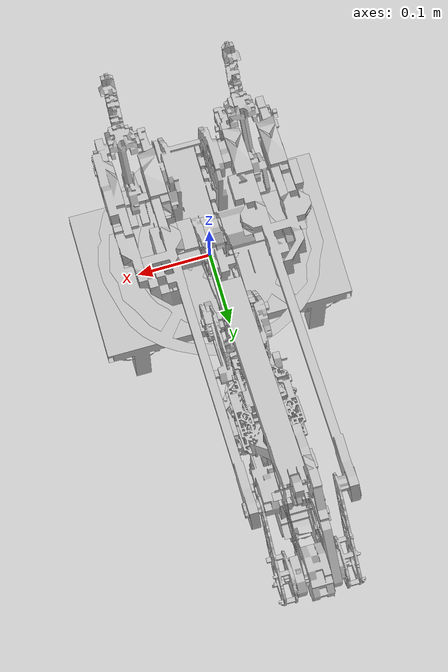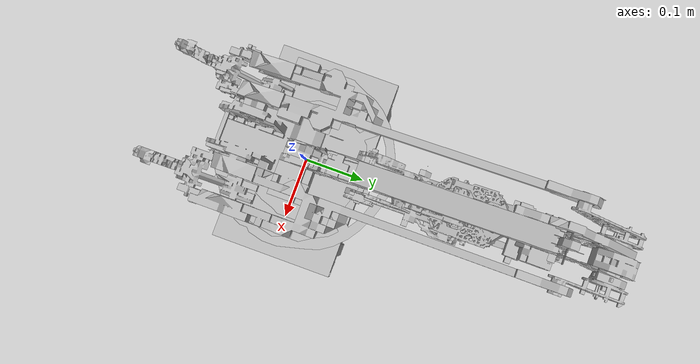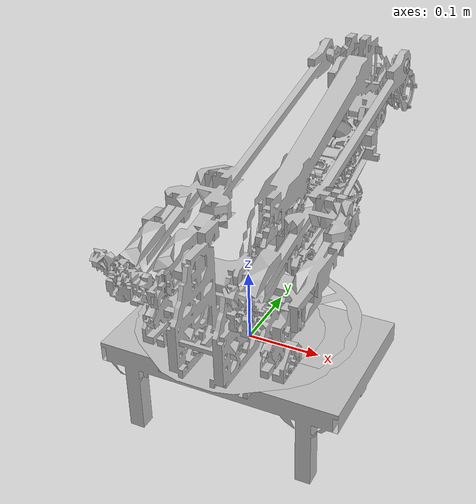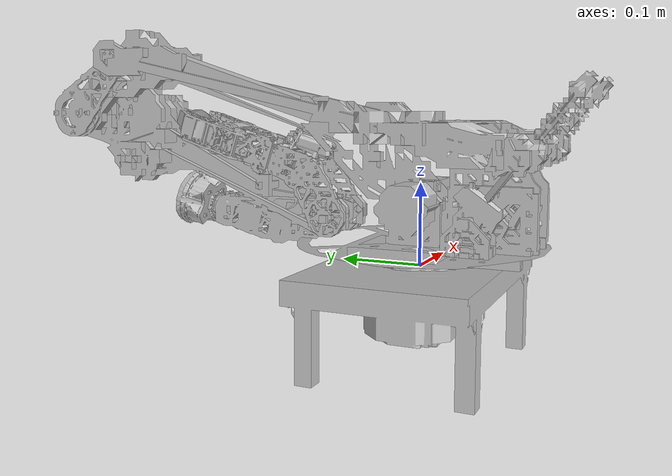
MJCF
<mujoco model="0-臂-anOt">
  <compiler angle="radian" meshdir="meshes/"/>

  <asset>
    <mesh name="base_link" file="base_link.STL"/>
    <mesh name="Link_1" file="Link_1.STL"/>
    <mesh name="Link_2" file="Link_2.STL"/>
    <mesh name="Link_3" file="Link_3.STL"/>
    <mesh name="Link_4" file="Link_4.STL"/>
    <mesh name="Link_5" file="Link_5.STL"/>
    <mesh name="Link_6" file="Link_6.STL"/>
    <mesh name="Link_7" file="Link_7.STL"/>
    <mesh name="Link_11" file="Link_11.STL"/>
    <mesh name="Link_12" file="Link_12.STL"/>
    <mesh name="Link_10" file="Link_10.STL"/>
    <mesh name="Link_8" file="Link_8.STL"/>
    <mesh name="Link_9" file="Link_9.STL"/>
  </asset>

  <worldbody>
    <geom type="mesh" contype="0" conaffinity="0" group="1" density="0" rgba="0.75294 0.75294 0.75294 1" mesh="base_link"/>
    <geom type="mesh" rgba="0.75294 0.75294 0.75294 1" mesh="base_link"/>
    <body name="Link_1">
      <inertial pos="-0.01219 -0.025726 0.049914" quat="0.498078 0.501937 -0.501957 0.498012" mass="1.3823" diaginertia="0.00505165 0.003172 0.00250855"/>
      <joint name="J1" pos="0 0 0" axis="0 0 -1" range="-3.1416 3.1416"/>
      <geom type="mesh" contype="0" conaffinity="0" group="1" density="0" rgba="0.75294 0.75294 0.75294 1" mesh="Link_1"/>
      <geom type="mesh" rgba="0.75294 0.75294 0.75294 1" mesh="Link_1"/>
      <body name="Link_2" pos="0 0 0.07535" quat="0.707105 0 0.707108 0">
        <inertial pos="-0.068871 0.15511 0.014607" quat="0.444666 0.549754 -0.444688 0.549814" mass="1.1524" diaginertia="0.0022314 0.00175426 0.000604138"/>
        <joint name="J2" pos="0 0 0" axis="0 0 1" range="0 2.227"/>
        <geom type="mesh" contype="0" conaffinity="0" group="1" density="0" rgba="0.75294 0.75294 0.75294 1" mesh="Link_2"/>
        <geom type="mesh" rgba="0.75294 0.75294 0.75294 1" mesh="Link_2"/>
        <body name="Link_3" pos="-0.10725 0.48836 0" quat="1.34924e-11 3.67321e-06 -1 -3.67321e-06">
          <inertial pos="-0.041769 -0.12706 -3.4379e-06" quat="0.573415 0.413012 -0.573978 0.413722" mass="1.2359" diaginertia="0.0019604 0.00184772 0.000311304"/>
          <joint name="J3" pos="0 0 0" axis="0 0 -1" range="0 4.276"/>
          <geom type="mesh" contype="0" conaffinity="0" group="1" density="0" rgba="0.75294 0.75294 0.75294 1" mesh="Link_3"/>
          <geom type="mesh" rgba="0.75294 0.75294 0.75294 1" mesh="Link_3"/>
          <body name="Link_4" pos="-0.12444 -0.38015 0">
            <inertial pos="-0.0066335 0.11402 -0.0088916" quat="0.717581 0.693915 -0.0575559 0.0157091" mass="0.29689" diaginertia="0.000181189 0.000175591 5.39369e-05"/>
            <joint name="J4" pos="0 0 0" axis="0 0 1" range="0 3.927"/>
            <geom type="mesh" contype="0" conaffinity="0" group="1" density="0" rgba="0.75294 0.75294 0.75294 1" mesh="Link_4"/>
            <geom type="mesh" rgba="0.75294 0.75294 0.75294 1" mesh="Link_4"/>
            <body name="Link_5" pos="5.6187e-05 0.16772 0" quat="0.702472 -0.702475 0.0808152 -0.0808149">
              <inertial pos="-5.288e-09 -1.8999e-08 0.024128" quat="0.5 0.5 -0.5 0.5" mass="0.18435" diaginertia="6.112e-05 4.0172e-05 4.0172e-05"/>
              <joint name="J5" pos="0 0 0" axis="0 0 -1"/>
              <geom type="mesh" contype="0" conaffinity="0" group="1" density="0" rgba="0.75294 0.75294 0.75294 1" mesh="Link_5"/>
              <geom type="mesh" rgba="0.75294 0.75294 0.75294 1" mesh="Link_5"/>
            </body>
          </body>
          <body name="Link_6" pos="-0.12444 -0.38015 0">
            <inertial pos="0.055976 0.032844 -0.0012151" quat="0.653592 0.303132 -0.637553 0.272864" mass="0.293" diaginertia="8.00273e-05 6.46376e-05 4.69611e-05"/>
            <joint name="J6" pos="0 0 0" axis="0 0 -1" range="0 3.927"/>
            <geom type="mesh" contype="0" conaffinity="0" group="1" density="0" rgba="0.75294 0.75294 0.75294 1" mesh="Link_6"/>
            <geom type="mesh" rgba="0.75294 0.75294 0.75294 1" mesh="Link_6"/>
            <body name="Link_7" pos="0.068192 0.079743 0" quat="0.698278 -0.698281 0.111381 -0.111381">
              <inertial pos="-0.00042817 9.5866e-05 0.057354" quat="0.707106 0.707106 0.00101689 -0.00101689" mass="0.22142" diaginertia="5.37581e-05 4.27139e-05 3.2995e-05"/>
              <joint name="J7" pos="0 0 0" axis="0 0 1" range="-3.1416 3.1416"/>
              <geom type="mesh" contype="0" conaffinity="0" group="1" density="0" rgba="0.75294 0.75294 0.75294 1" mesh="Link_7"/>
              <geom type="mesh" rgba="0.75294 0.75294 0.75294 1" mesh="Link_7"/>
              <body name="Link_11" pos="0 -0.00047701 0.083">
                <inertial pos="-0.0020481 0.022277 0.01533" quat="0.998104 -0.0153873 -0.00241868 -0.0595401" mass="0.057886" diaginertia="2.11389e-05 1.96725e-05 4.91452e-06"/>
                <joint name="PJ11" pos="0 0 0" axis="0 1 0" type="slide" range="0 0.02"/>
                <site name="eef_site" pos="0 0 0.05" type="sphere" size="0.02"/>
                <site name="attachment_site" pos="0 0 0.02" type="sphere" size="0.01"/>
                <geom type="mesh" contype="0" conaffinity="0" group="1" density="0" rgba="0.75294 0.75294 0.75294 1" mesh="Link_11"/>
                <geom type="mesh" rgba="0.75294 0.75294 0.75294 1" mesh="Link_11"/>
              </body>
              <body name="Link_12" pos="0 0.00047701 0.083">
                <inertial pos="0.0021095 -0.022277 0.01533" quat="0.999169 0.0154148 -0.00271277 0.0376372" mass="0.057886" diaginertia="2.11265e-05 1.96851e-05 4.91437e-06"/>
                <joint name="PJ12" pos="0 0 0" axis="0 -1 0" type="slide" range="0 0.02"/>
                <geom type="mesh" contype="0" conaffinity="0" group="1" density="0" rgba="0.75294 0.75294 0.75294 1" mesh="Link_12"/>
                <geom type="mesh" rgba="0.75294 0.75294 0.75294 1" mesh="Link_12"/>
              </body>
            </body>
          </body>
        </body>
        <body name="Link_10" pos="-0.10725 0.48836 0" quat="1.34924e-11 3.67321e-06 -1 -3.67321e-06">
          <inertial pos="0.0069421 -0.0076704 6.7336e-06" quat="0.286933 0.646274 -0.286933 0.646274" mass="0.37505" diaginertia="0.0002094 0.000178684 7.58764e-05"/>
          <joint name="J10" pos="0 0 0" axis="0 0 1" range="-4 4"/>
          <geom type="mesh" contype="0" conaffinity="0" group="1" density="0" rgba="0.75294 0.75294 0.75294 1" mesh="Link_10"/>
          <geom type="mesh" rgba="0.75294 0.75294 0.75294 1" mesh="Link_10"/>
        </body>
      </body>
      <body name="Link_8" pos="0 -0.08 0.14768" quat="0.707105 0 0.707108 0">
        <inertial pos="-0.030242 0.13807 0" quat="0.443129 0.551011 -0.443156 0.551033" mass="0.84442" diaginertia="0.0032793 0.00326354 7.42402e-05"/>
        <joint name="J8" pos="0 0 0" axis="0 0 1" range="-4 4"/>
        <geom type="mesh" contype="0" conaffinity="0" group="1" density="0" rgba="0.75294 0.75294 0.75294 1" mesh="Link_8"/>
        <geom type="mesh" rgba="0.75294 0.75294 0.75294 1" mesh="Link_8"/>
      </body>
      <body name="Link_9" pos="0 -0.08 0.06835" quat="0.707105 0 0.707108 0">
        <inertial pos="-0.056215 -0.044198 1.4175e-06" quat="-0.237714 0.665908 0.237632 0.666025" mass="0.64642" diaginertia="0.00032157 0.000298077 4.8093e-05"/>
        <joint name="J9" pos="0 0 0" axis="0 0 -1" range="-4 4"/>
        <geom type="mesh" contype="0" conaffinity="0" group="1" density="0" rgba="0.75294 0.75294 0.75294 1" mesh="Link_9"/>
        <geom type="mesh" rgba="0.75294 0.75294 0.75294 1" mesh="Link_9"/>
      </body>
    </body>
  </worldbody>
</mujoco>
